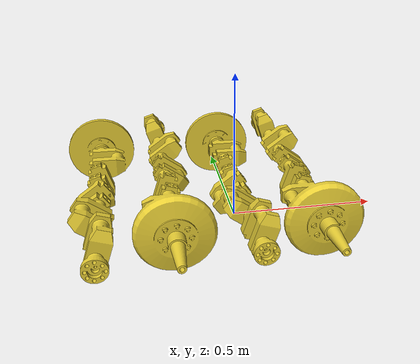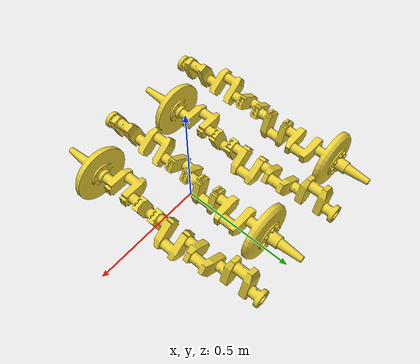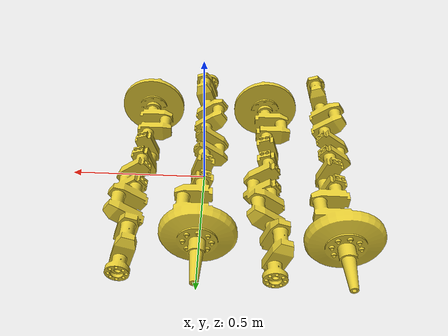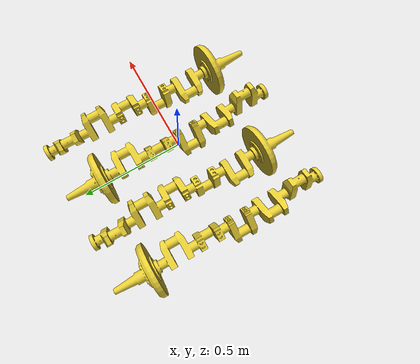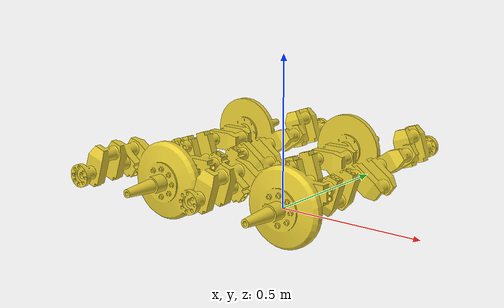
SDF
<?xml version="1.0" ?>
<sdf version="1.5">
  <model name="crankshafts">

    <pose>0 0 0  0 0 0</pose>

    <static>true</static>
    <link name="link">
      <inertial>
        <mass>54.4311</mass>
        <inertia>
          <ixx>1</ixx>
          <ixy>0</ixy>
          <ixz>0</ixz>
          <iyy>1</iyy>
          <iyz>0</iyz>
          <izz>1</izz>
        </inertia>
      </inertial>

      <collision name="collision">
	    <pose>0 0 0  0 0 0</pose>
        <geometry>
          <mesh>
            <uri>model://crankshafts/meshes/Crankshafts.stl</uri>
          </mesh>
        </geometry>
      </collision>

      <visual name="visual">
        <geometry>
          <mesh>
            <uri>model://crankshafts/meshes/Crankshafts.stl</uri>
          </mesh>
        </geometry>
        <material>
           <script>
  <name>Gazebo/ZincYellow</name>
  </script>
        </material>
      </visual>
    </link>
  </model>
</sdf>
